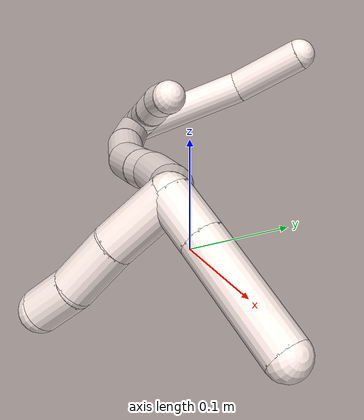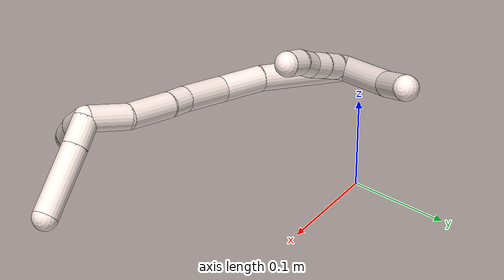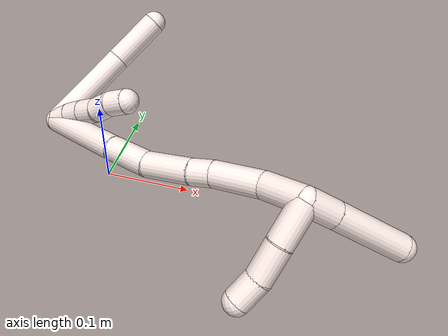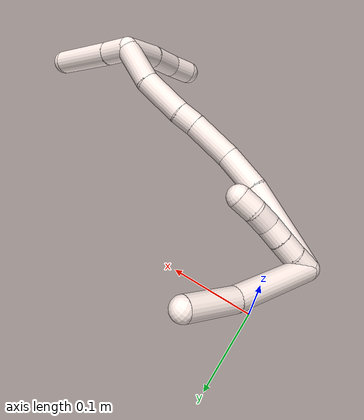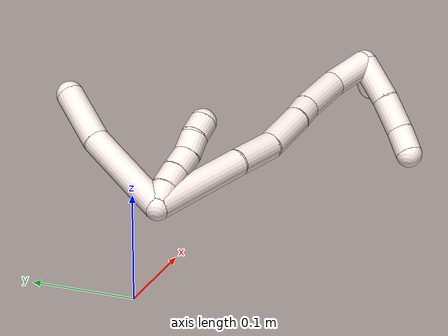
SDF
<sdf version="1.7">
 <world name="default">
  <model name="11">
   <static>0</static>
   <link name="11">
    <collision name="collision-cylinder-e_1_2_8">
     <pose>-0.011968 0.03309 0.030706 -0.82276 -0.25916 0.113579</pose>
     <geometry><cylinder><radius>0.0125</radius><length>0.093403</length></cylinder></geometry>
     <surface>
      <friction><ode><mu>1.16</mu><mu2>1.16</mu2><slip1>0</slip1><slip2>0</slip2></ode></friction>
      <contact><ode><kp>1e+06</kp><kd>1</kd><max_vel>0</max_vel><min_depth>0.001</min_depth></ode></contact>
     </surface>
    </collision>
    <visual name="visual-cylinder-e_1_2_8">
     <pose>-0.011968 0.03309 0.030706 -0.82276 -0.25916 0.113579</pose>
     <geometry><cylinder><radius>0.0125</radius><length>0.093403</length></cylinder></geometry>
     <material><ambient>1 0.933333 0.909804 1</ambient></material>
    </visual>
    <collision name="collision-cylinder-e_2_8_6">
     <pose>-0.03186 0.08196 0.083525 -0.619763 -0.283806 0.091425</pose>
     <geometry><cylinder><radius>0.0125</radius><length>0.056597</length></cylinder></geometry>
     <surface>
      <friction><ode><mu>1.16</mu><mu2>1.16</mu2><slip1>0</slip1><slip2>0</slip2></ode></friction>
      <contact><ode><kp>1e+06</kp><kd>1</kd><max_vel>0</max_vel><min_depth>0.001</min_depth></ode></contact>
     </surface>
    </collision>
    <visual name="visual-cylinder-e_2_8_6">
     <pose>-0.03186 0.08196 0.083525 -0.619763 -0.283806 0.091425</pose>
     <geometry><cylinder><radius>0.0125</radius><length>0.056597</length></cylinder></geometry>
     <material><ambient>1 0.933333 0.909804 1</ambient></material>
    </visual>
    <collision name="collision-cylinder-e_1_2_9">
     <pose>0.000116 -0.00106 0.009943 0.106222 0.011649 0.000619</pose>
     <geometry><cylinder><radius>0.0125</radius><length>0.02</length></cylinder></geometry>
     <surface>
      <friction><ode><mu>1.16</mu><mu2>1.16</mu2><slip1>0</slip1><slip2>0</slip2></ode></friction>
      <contact><ode><kp>1e+06</kp><kd>1</kd><max_vel>0</max_vel><min_depth>0.001</min_depth></ode></contact>
     </surface>
    </collision>
    <visual name="visual-cylinder-e_1_2_9">
     <pose>0.000116 -0.00106 0.009943 0.106222 0.011649 0.000619</pose>
     <geometry><cylinder><radius>0.0125</radius><length>0.02</length></cylinder></geometry>
     <material><ambient>1 0.933333 0.909804 1</ambient></material>
    </visual>
    <collision name="collision-cylinder-e_2_9_10">
     <pose>0.001498 -0.004343 0.029553 0.226027 0.126798 0.01441</pose>
     <geometry><cylinder><radius>0.0125</radius><length>0.02</length></cylinder></geometry>
     <surface>
      <friction><ode><mu>1.16</mu><mu2>1.16</mu2><slip1>0</slip1><slip2>0</slip2></ode></friction>
      <contact><ode><kp>1e+06</kp><kd>1</kd><max_vel>0</max_vel><min_depth>0.001</min_depth></ode></contact>
     </surface>
    </collision>
    <visual name="visual-cylinder-e_2_9_10">
     <pose>0.001498 -0.004343 0.029553 0.226027 0.126798 0.01441</pose>
     <geometry><cylinder><radius>0.0125</radius><length>0.02</length></cylinder></geometry>
     <material><ambient>1 0.933333 0.909804 1</ambient></material>
    </visual>
    <collision name="collision-cylinder-e_3_10_11">
     <pose>0.004444 -0.009052 0.04876 0.254922 0.168981 0.021707</pose>
     <geometry><cylinder><radius>0.0125</radius><length>0.02</length></cylinder></geometry>
     <surface>
      <friction><ode><mu>1.16</mu><mu2>1.16</mu2><slip1>0</slip1><slip2>0</slip2></ode></friction>
      <contact><ode><kp>1e+06</kp><kd>1</kd><max_vel>0</max_vel><min_depth>0.001</min_depth></ode></contact>
     </surface>
    </collision>
    <visual name="visual-cylinder-e_3_10_11">
     <pose>0.004444 -0.009052 0.04876 0.254922 0.168981 0.021707</pose>
     <geometry><cylinder><radius>0.0125</radius><length>0.02</length></cylinder></geometry>
     <material><ambient>1 0.933333 0.909804 1</ambient></material>
    </visual>
    <collision name="collision-cylinder-e_4_11_12">
     <pose>0.005914 -0.012829 0.068213 0.129535 -0.021185 -0.001374</pose>
     <geometry><cylinder><radius>0.0125</radius><length>0.02</length></cylinder></geometry>
     <surface>
      <friction><ode><mu>1.16</mu><mu2>1.16</mu2><slip1>0</slip1><slip2>0</slip2></ode></friction>
      <contact><ode><kp>1e+06</kp><kd>1</kd><max_vel>0</max_vel><min_depth>0.001</min_depth></ode></contact>
     </surface>
    </collision>
    <visual name="visual-cylinder-e_4_11_12">
     <pose>0.005914 -0.012829 0.068213 0.129535 -0.021185 -0.001374</pose>
     <geometry><cylinder><radius>0.0125</radius><length>0.02</length></cylinder></geometry>
     <material><ambient>1 0.933333 0.909804 1</ambient></material>
    </visual>
    <collision name="collision-cylinder-e_5_12_5">
     <pose>0.007843 -0.015217 0.087833 0.112437 0.215779 0.012191</pose>
     <geometry><cylinder><radius>0.0125</radius><length>0.02</length></cylinder></geometry>
     <surface>
      <friction><ode><mu>1.16</mu><mu2>1.16</mu2><slip1>0</slip1><slip2>0</slip2></ode></friction>
      <contact><ode><kp>1e+06</kp><kd>1</kd><max_vel>0</max_vel><min_depth>0.001</min_depth></ode></contact>
     </surface>
    </collision>
    <visual name="visual-cylinder-e_5_12_5">
     <pose>0.007843 -0.015217 0.087833 0.112437 0.215779 0.012191</pose>
     <geometry><cylinder><radius>0.0125</radius><length>0.02</length></cylinder></geometry>
     <material><ambient>1 0.933333 0.909804 1</ambient></material>
    </visual>
    <collision name="collision-cylinder-e_1_2_13">
     <pose>0.021223 -0.020729 0.037113 0.509376 0.463037 0.122595</pose>
     <geometry><cylinder><radius>0.0125</radius><length>0.095026</length></cylinder></geometry>
     <surface>
      <friction><ode><mu>1.16</mu><mu2>1.16</mu2><slip1>0</slip1><slip2>0</slip2></ode></friction>
      <contact><ode><kp>1e+06</kp><kd>1</kd><max_vel>0</max_vel><min_depth>0.001</min_depth></ode></contact>
     </surface>
    </collision>
    <visual name="visual-cylinder-e_1_2_13">
     <pose>0.021223 -0.020729 0.037113 0.509376 0.463037 0.122595</pose>
     <geometry><cylinder><radius>0.0125</radius><length>0.095026</length></cylinder></geometry>
     <material><ambient>1 0.933333 0.909804 1</ambient></material>
    </visual>
    <collision name="collision-cylinder-e_2_13_14">
     <pose>0.054063 -0.048578 0.091582 0.389269 0.554508 0.112083</pose>
     <geometry><cylinder><radius>0.0125</radius><length>0.044129</length></cylinder></geometry>
     <surface>
      <friction><ode><mu>1.16</mu><mu2>1.16</mu2><slip1>0</slip1><slip2>0</slip2></ode></friction>
      <contact><ode><kp>1e+06</kp><kd>1</kd><max_vel>0</max_vel><min_depth>0.001</min_depth></ode></contact>
     </surface>
    </collision>
    <visual name="visual-cylinder-e_2_13_14">
     <pose>0.054063 -0.048578 0.091582 0.389269 0.554508 0.112083</pose>
     <geometry><cylinder><radius>0.0125</radius><length>0.044129</length></cylinder></geometry>
     <material><ambient>1 0.933333 0.909804 1</ambient></material>
    </visual>
    <collision name="collision-cylinder-e_3_14_15">
     <pose>0.075079 -0.060211 0.13048 0.206568 0.403574 0.042402</pose>
     <geometry><cylinder><radius>0.0125</radius><length>0.047868</length></cylinder></geometry>
     <surface>
      <friction><ode><mu>1.16</mu><mu2>1.16</mu2><slip1>0</slip1><slip2>0</slip2></ode></friction>
      <contact><ode><kp>1e+06</kp><kd>1</kd><max_vel>0</max_vel><min_depth>0.001</min_depth></ode></contact>
     </surface>
    </collision>
    <visual name="visual-cylinder-e_3_14_15">
     <pose>0.075079 -0.060211 0.13048 0.206568 0.403574 0.042402</pose>
     <geometry><cylinder><radius>0.0125</radius><length>0.047868</length></cylinder></geometry>
     <material><ambient>1 0.933333 0.909804 1</ambient></material>
    </visual>
    <collision name="collision-cylinder-e_4_15_16">
     <pose>0.088568 -0.065681 0.161897 0.096496 0.39108 0.019127</pose>
     <geometry><cylinder><radius>0.0125</radius><length>0.02146</length></cylinder></geometry>
     <surface>
      <friction><ode><mu>1.16</mu><mu2>1.16</mu2><slip1>0</slip1><slip2>0</slip2></ode></friction>
      <contact><ode><kp>1e+06</kp><kd>1</kd><max_vel>0</max_vel><min_depth>0.001</min_depth></ode></contact>
     </surface>
    </collision>
    <visual name="visual-cylinder-e_4_15_16">
     <pose>0.088568 -0.065681 0.161897 0.096496 0.39108 0.019127</pose>
     <geometry><cylinder><radius>0.0125</radius><length>0.02146</length></cylinder></geometry>
     <material><ambient>1 0.933333 0.909804 1</ambient></material>
    </visual>
    <collision name="collision-cylinder-e_5_16_17">
     <pose>0.103075 -0.071655 0.19323 0.22971 0.441545 0.05177</pose>
     <geometry><cylinder><radius>0.0125</radius><length>0.048752</length></cylinder></geometry>
     <surface>
      <friction><ode><mu>1.16</mu><mu2>1.16</mu2><slip1>0</slip1><slip2>0</slip2></ode></friction>
      <contact><ode><kp>1e+06</kp><kd>1</kd><max_vel>0</max_vel><min_depth>0.001</min_depth></ode></contact>
     </surface>
    </collision>
    <visual name="visual-cylinder-e_5_16_17">
     <pose>0.103075 -0.071655 0.19323 0.22971 0.441545 0.05177</pose>
     <geometry><cylinder><radius>0.0125</radius><length>0.048752</length></cylinder></geometry>
     <material><ambient>1 0.933333 0.909804 1</ambient></material>
    </visual>
    <collision name="collision-cylinder-e_6_17_1">
     <pose>0.121428 -0.08618 0.23212 0.499286 0.380267 0.09806</pose>
     <geometry><cylinder><radius>0.0125</radius><length>0.042765</length></cylinder></geometry>
     <surface>
      <friction><ode><mu>1.16</mu><mu2>1.16</mu2><slip1>0</slip1><slip2>0</slip2></ode></friction>
      <contact><ode><kp>1e+06</kp><kd>1</kd><max_vel>0</max_vel><min_depth>0.001</min_depth></ode></contact>
     </surface>
    </collision>
    <visual name="visual-cylinder-e_6_17_1">
     <pose>0.121428 -0.08618 0.23212 0.499286 0.380267 0.09806</pose>
     <geometry><cylinder><radius>0.0125</radius><length>0.042765</length></cylinder></geometry>
     <material><ambient>1 0.933333 0.909804 1</ambient></material>
    </visual>
    <collision name="collision-cylinder-e_1_1_18">
     <pose>0.139724 -0.10501 0.234776 2.57866 0.535202 1.51768</pose>
     <geometry><cylinder><radius>0.0125</radius><length>0.040622</length></cylinder></geometry>
     <surface>
      <friction><ode><mu>1.16</mu><mu2>1.16</mu2><slip1>0</slip1><slip2>0</slip2></ode></friction>
      <contact><ode><kp>1e+06</kp><kd>1</kd><max_vel>0</max_vel><min_depth>0.001</min_depth></ode></contact>
     </surface>
    </collision>
    <visual name="visual-cylinder-e_1_1_18">
     <pose>0.139724 -0.10501 0.234776 2.57866 0.535202 1.51768</pose>
     <geometry><cylinder><radius>0.0125</radius><length>0.040622</length></cylinder></geometry>
     <material><ambient>1 0.933333 0.909804 1</ambient></material>
    </visual>
    <collision name="collision-cylinder-e_2_18_19">
     <pose>0.159223 -0.12051 0.207348 2.68745 0.575778 1.81638</pose>
     <geometry><cylinder><radius>0.0125</radius><length>0.033573</length></cylinder></geometry>
     <surface>
      <friction><ode><mu>1.16</mu><mu2>1.16</mu2><slip1>0</slip1><slip2>0</slip2></ode></friction>
      <contact><ode><kp>1e+06</kp><kd>1</kd><max_vel>0</max_vel><min_depth>0.001</min_depth></ode></contact>
     </surface>
    </collision>
    <visual name="visual-cylinder-e_2_18_19">
     <pose>0.159223 -0.12051 0.207348 2.68745 0.575778 1.81638</pose>
     <geometry><cylinder><radius>0.0125</radius><length>0.033573</length></cylinder></geometry>
     <material><ambient>1 0.933333 0.909804 1</ambient></material>
    </visual>
    <collision name="collision-cylinder-e_3_19_4">
     <pose>0.172801 -0.131634 0.183636 2.72099 0.35114 1.38679</pose>
     <geometry><cylinder><radius>0.0125</radius><length>0.025804</length></cylinder></geometry>
     <surface>
      <friction><ode><mu>1.16</mu><mu2>1.16</mu2><slip1>0</slip1><slip2>0</slip2></ode></friction>
      <contact><ode><kp>1e+06</kp><kd>1</kd><max_vel>0</max_vel><min_depth>0.001</min_depth></ode></contact>
     </surface>
    </collision>
    <visual name="visual-cylinder-e_3_19_4">
     <pose>0.172801 -0.131634 0.183636 2.72099 0.35114 1.38679</pose>
     <geometry><cylinder><radius>0.0125</radius><length>0.025804</length></cylinder></geometry>
     <material><ambient>1 0.933333 0.909804 1</ambient></material>
    </visual>
    <collision name="collision-cylinder-e_1_1_20">
     <pose>0.141453 -0.090274 0.255612 -0.72893 0.978988 -0.401027</pose>
     <geometry><cylinder><radius>0.0125</radius><length>0.029129</length></cylinder></geometry>
     <surface>
      <friction><ode><mu>1.16</mu><mu2>1.16</mu2><slip1>0</slip1><slip2>0</slip2></ode></friction>
      <contact><ode><kp>1e+06</kp><kd>1</kd><max_vel>0</max_vel><min_depth>0.001</min_depth></ode></contact>
     </surface>
    </collision>
    <visual name="visual-cylinder-e_1_1_20">
     <pose>0.141453 -0.090274 0.255612 -0.72893 0.978988 -0.401027</pose>
     <geometry><cylinder><radius>0.0125</radius><length>0.029129</length></cylinder></geometry>
     <material><ambient>1 0.933333 0.909804 1</ambient></material>
    </visual>
    <collision name="collision-cylinder-e_2_20_3">
     <pose>0.183135 -0.072559 0.276786 -0.68322 0.988459 -0.378577</pose>
     <geometry><cylinder><radius>0.0125</radius><length>0.070871</length></cylinder></geometry>
     <surface>
      <friction><ode><mu>1.16</mu><mu2>1.16</mu2><slip1>0</slip1><slip2>0</slip2></ode></friction>
      <contact><ode><kp>1e+06</kp><kd>1</kd><max_vel>0</max_vel><min_depth>0.001</min_depth></ode></contact>
     </surface>
    </collision>
    <visual name="visual-cylinder-e_2_20_3">
     <pose>0.183135 -0.072559 0.276786 -0.68322 0.988459 -0.378577</pose>
     <geometry><cylinder><radius>0.0125</radius><length>0.070871</length></cylinder></geometry>
     <material><ambient>1 0.933333 0.909804 1</ambient></material>
    </visual>
    <collision name="collision-sphere-3">
     <pose>0.21273 -0.060256 0.291901 0 -0 0</pose>
     <geometry><sphere><radius>0.0125</radius></sphere></geometry>
     <surface>
      <friction><ode><mu>1.16</mu><mu2>1.16</mu2><slip1>0</slip1><slip2>0</slip2></ode></friction>
      <contact><ode><kp>1e+06</kp><kd>1</kd><max_vel>0</max_vel><min_depth>0.001</min_depth></ode></contact>
     </surface>
    </collision>
    <visual name="visual-sphere-3">
     <pose>0.21273 -0.060256 0.291901 0 -0 0</pose>
     <geometry><sphere><radius>0.0125</radius></sphere></geometry>
     <material><ambient>1 0.933333 0.909804 1</ambient></material>
    </visual>
    <collision name="collision-sphere-20">
     <pose>0.15354 -0.084863 0.261672 0 -0 0</pose>
     <geometry><sphere><radius>0.0125</radius></sphere></geometry>
     <surface>
      <friction><ode><mu>1.16</mu><mu2>1.16</mu2><slip1>0</slip1><slip2>0</slip2></ode></friction>
      <contact><ode><kp>1e+06</kp><kd>1</kd><max_vel>0</max_vel><min_depth>0.001</min_depth></ode></contact>
     </surface>
    </collision>
    <visual name="visual-sphere-20">
     <pose>0.15354 -0.084863 0.261672 0 -0 0</pose>
     <geometry><sphere><radius>0.0125</radius></sphere></geometry>
     <material><ambient>1 0.933333 0.909804 1</ambient></material>
    </visual>
    <collision name="collision-sphere-4">
     <pose>0.177239 -0.136581 0.172577 0 -0 0</pose>
     <geometry><sphere><radius>0.0125</radius></sphere></geometry>
     <surface>
      <friction><ode><mu>1.16</mu><mu2>1.16</mu2><slip1>0</slip1><slip2>0</slip2></ode></friction>
      <contact><ode><kp>1e+06</kp><kd>1</kd><max_vel>0</max_vel><min_depth>0.001</min_depth></ode></contact>
     </surface>
    </collision>
    <visual name="visual-sphere-4">
     <pose>0.177239 -0.136581 0.172577 0 -0 0</pose>
     <geometry><sphere><radius>0.0125</radius></sphere></geometry>
     <material><ambient>1 0.933333 0.909804 1</ambient></material>
    </visual>
    <collision name="collision-sphere-11">
     <pose>0.006126 -0.011538 0.058299 0 -0 0</pose>
     <geometry><sphere><radius>0.0125</radius></sphere></geometry>
     <surface>
      <friction><ode><mu>1.16</mu><mu2>1.16</mu2><slip1>0</slip1><slip2>0</slip2></ode></friction>
      <contact><ode><kp>1e+06</kp><kd>1</kd><max_vel>0</max_vel><min_depth>0.001</min_depth></ode></contact>
     </surface>
    </collision>
    <visual name="visual-sphere-11">
     <pose>0.006126 -0.011538 0.058299 0 -0 0</pose>
     <geometry><sphere><radius>0.0125</radius></sphere></geometry>
     <material><ambient>1 0.933333 0.909804 1</ambient></material>
    </visual>
    <collision name="collision-sphere-10">
     <pose>0.002762 -0.006566 0.039221 0 -0 0</pose>
     <geometry><sphere><radius>0.0125</radius></sphere></geometry>
     <surface>
      <friction><ode><mu>1.16</mu><mu2>1.16</mu2><slip1>0</slip1><slip2>0</slip2></ode></friction>
      <contact><ode><kp>1e+06</kp><kd>1</kd><max_vel>0</max_vel><min_depth>0.001</min_depth></ode></contact>
     </surface>
    </collision>
    <visual name="visual-sphere-10">
     <pose>0.002762 -0.006566 0.039221 0 -0 0</pose>
     <geometry><sphere><radius>0.0125</radius></sphere></geometry>
     <material><ambient>1 0.933333 0.909804 1</ambient></material>
    </visual>
    <collision name="collision-sphere-6">
     <pose>-0.039784 0.097739 0.105639 0 -0 0</pose>
     <geometry><sphere><radius>0.0125</radius></sphere></geometry>
     <surface>
      <friction><ode><mu>1.16</mu><mu2>1.16</mu2><slip1>0</slip1><slip2>0</slip2></ode></friction>
      <contact><ode><kp>1e+06</kp><kd>1</kd><max_vel>0</max_vel><min_depth>0.001</min_depth></ode></contact>
     </surface>
    </collision>
    <visual name="visual-sphere-6">
     <pose>-0.039784 0.097739 0.105639 0 -0 0</pose>
     <geometry><sphere><radius>0.0125</radius></sphere></geometry>
     <material><ambient>1 0.933333 0.909804 1</ambient></material>
    </visual>
    <collision name="collision-sphere-9">
     <pose>0.000233 -0.00212 0.019886 0 -0 0</pose>
     <geometry><sphere><radius>0.0125</radius></sphere></geometry>
     <surface>
      <friction><ode><mu>1.16</mu><mu2>1.16</mu2><slip1>0</slip1><slip2>0</slip2></ode></friction>
      <contact><ode><kp>1e+06</kp><kd>1</kd><max_vel>0</max_vel><min_depth>0.001</min_depth></ode></contact>
     </surface>
    </collision>
    <visual name="visual-sphere-9">
     <pose>0.000233 -0.00212 0.019886 0 -0 0</pose>
     <geometry><sphere><radius>0.0125</radius></sphere></geometry>
     <material><ambient>1 0.933333 0.909804 1</ambient></material>
    </visual>
    <collision name="collision-sphere-2">
     <geometry><sphere><radius>0.0125</radius></sphere></geometry>
     <surface>
      <friction><ode><mu>1.16</mu><mu2>1.16</mu2><slip1>0</slip1><slip2>0</slip2></ode></friction>
      <contact><ode><kp>1e+06</kp><kd>1</kd><max_vel>0</max_vel><min_depth>0.001</min_depth></ode></contact>
     </surface>
    </collision>
    <visual name="visual-sphere-2">
     <geometry><sphere><radius>0.0125</radius></sphere></geometry>
     <material><ambient>1 0.933333 0.909804 1</ambient></material>
    </visual>
    <collision name="collision-sphere-19">
     <pose>0.168363 -0.126687 0.194695 0 -0 0</pose>
     <geometry><sphere><radius>0.0125</radius></sphere></geometry>
     <surface>
      <friction><ode><mu>1.16</mu><mu2>1.16</mu2><slip1>0</slip1><slip2>0</slip2></ode></friction>
      <contact><ode><kp>1e+06</kp><kd>1</kd><max_vel>0</max_vel><min_depth>0.001</min_depth></ode></contact>
     </surface>
    </collision>
    <visual name="visual-sphere-19">
     <pose>0.168363 -0.126687 0.194695 0 -0 0</pose>
     <geometry><sphere><radius>0.0125</radius></sphere></geometry>
     <material><ambient>1 0.933333 0.909804 1</ambient></material>
    </visual>
    <collision name="collision-sphere-8">
     <pose>-0.023936 0.06618 0.061411 0 -0 0</pose>
     <geometry><sphere><radius>0.0125</radius></sphere></geometry>
     <surface>
      <friction><ode><mu>1.16</mu><mu2>1.16</mu2><slip1>0</slip1><slip2>0</slip2></ode></friction>
      <contact><ode><kp>1e+06</kp><kd>1</kd><max_vel>0</max_vel><min_depth>0.001</min_depth></ode></contact>
     </surface>
    </collision>
    <visual name="visual-sphere-8">
     <pose>-0.023936 0.06618 0.061411 0 -0 0</pose>
     <geometry><sphere><radius>0.0125</radius></sphere></geometry>
     <material><ambient>1 0.933333 0.909804 1</ambient></material>
    </visual>
    <collision name="collision-sphere-12">
     <pose>0.005702 -0.014121 0.078127 0 -0 0</pose>
     <geometry><sphere><radius>0.0125</radius></sphere></geometry>
     <surface>
      <friction><ode><mu>1.16</mu><mu2>1.16</mu2><slip1>0</slip1><slip2>0</slip2></ode></friction>
      <contact><ode><kp>1e+06</kp><kd>1</kd><max_vel>0</max_vel><min_depth>0.001</min_depth></ode></contact>
     </surface>
    </collision>
    <visual name="visual-sphere-12">
     <pose>0.005702 -0.014121 0.078127 0 -0 0</pose>
     <geometry><sphere><radius>0.0125</radius></sphere></geometry>
     <material><ambient>1 0.933333 0.909804 1</ambient></material>
    </visual>
    <collision name="collision-sphere-5">
     <pose>0.009984 -0.016313 0.09754 0 -0 0</pose>
     <geometry><sphere><radius>0.0125</radius></sphere></geometry>
     <surface>
      <friction><ode><mu>1.16</mu><mu2>1.16</mu2><slip1>0</slip1><slip2>0</slip2></ode></friction>
      <contact><ode><kp>1e+06</kp><kd>1</kd><max_vel>0</max_vel><min_depth>0.001</min_depth></ode></contact>
     </surface>
    </collision>
    <visual name="visual-sphere-5">
     <pose>0.009984 -0.016313 0.09754 0 -0 0</pose>
     <geometry><sphere><radius>0.0125</radius></sphere></geometry>
     <material><ambient>1 0.933333 0.909804 1</ambient></material>
    </visual>
    <collision name="collision-sphere-13">
     <pose>0.042445 -0.041459 0.074227 0 -0 0</pose>
     <geometry><sphere><radius>0.0125</radius></sphere></geometry>
     <surface>
      <friction><ode><mu>1.16</mu><mu2>1.16</mu2><slip1>0</slip1><slip2>0</slip2></ode></friction>
      <contact><ode><kp>1e+06</kp><kd>1</kd><max_vel>0</max_vel><min_depth>0.001</min_depth></ode></contact>
     </surface>
    </collision>
    <visual name="visual-sphere-13">
     <pose>0.042445 -0.041459 0.074227 0 -0 0</pose>
     <geometry><sphere><radius>0.0125</radius></sphere></geometry>
     <material><ambient>1 0.933333 0.909804 1</ambient></material>
    </visual>
    <collision name="collision-sphere-14">
     <pose>0.06568 -0.055697 0.108936 0 -0 0</pose>
     <geometry><sphere><radius>0.0125</radius></sphere></geometry>
     <surface>
      <friction><ode><mu>1.16</mu><mu2>1.16</mu2><slip1>0</slip1><slip2>0</slip2></ode></friction>
      <contact><ode><kp>1e+06</kp><kd>1</kd><max_vel>0</max_vel><min_depth>0.001</min_depth></ode></contact>
     </surface>
    </collision>
    <visual name="visual-sphere-14">
     <pose>0.06568 -0.055697 0.108936 0 -0 0</pose>
     <geometry><sphere><radius>0.0125</radius></sphere></geometry>
     <material><ambient>1 0.933333 0.909804 1</ambient></material>
    </visual>
    <collision name="collision-sphere-15">
     <pose>0.084478 -0.064726 0.152023 0 -0 0</pose>
     <geometry><sphere><radius>0.0125</radius></sphere></geometry>
     <surface>
      <friction><ode><mu>1.16</mu><mu2>1.16</mu2><slip1>0</slip1><slip2>0</slip2></ode></friction>
      <contact><ode><kp>1e+06</kp><kd>1</kd><max_vel>0</max_vel><min_depth>0.001</min_depth></ode></contact>
     </surface>
    </collision>
    <visual name="visual-sphere-15">
     <pose>0.084478 -0.064726 0.152023 0 -0 0</pose>
     <geometry><sphere><radius>0.0125</radius></sphere></geometry>
     <material><ambient>1 0.933333 0.909804 1</ambient></material>
    </visual>
    <collision name="collision-sphere-16">
     <pose>0.092658 -0.066637 0.17177 0 -0 0</pose>
     <geometry><sphere><radius>0.0125</radius></sphere></geometry>
     <surface>
      <friction><ode><mu>1.16</mu><mu2>1.16</mu2><slip1>0</slip1><slip2>0</slip2></ode></friction>
      <contact><ode><kp>1e+06</kp><kd>1</kd><max_vel>0</max_vel><min_depth>0.001</min_depth></ode></contact>
     </surface>
    </collision>
    <visual name="visual-sphere-16">
     <pose>0.092658 -0.066637 0.17177 0 -0 0</pose>
     <geometry><sphere><radius>0.0125</radius></sphere></geometry>
     <material><ambient>1 0.933333 0.909804 1</ambient></material>
    </visual>
    <collision name="collision-sphere-17">
     <pose>0.113492 -0.076673 0.214689 0 -0 0</pose>
     <geometry><sphere><radius>0.0125</radius></sphere></geometry>
     <surface>
      <friction><ode><mu>1.16</mu><mu2>1.16</mu2><slip1>0</slip1><slip2>0</slip2></ode></friction>
      <contact><ode><kp>1e+06</kp><kd>1</kd><max_vel>0</max_vel><min_depth>0.001</min_depth></ode></contact>
     </surface>
    </collision>
    <visual name="visual-sphere-17">
     <pose>0.113492 -0.076673 0.214689 0 -0 0</pose>
     <geometry><sphere><radius>0.0125</radius></sphere></geometry>
     <material><ambient>1 0.933333 0.909804 1</ambient></material>
    </visual>
    <collision name="collision-sphere-1">
     <pose>0.129365 -0.095686 0.249551 0 -0 0</pose>
     <geometry><sphere><radius>0.0125</radius></sphere></geometry>
     <surface>
      <friction><ode><mu>1.16</mu><mu2>1.16</mu2><slip1>0</slip1><slip2>0</slip2></ode></friction>
      <contact><ode><kp>1e+06</kp><kd>1</kd><max_vel>0</max_vel><min_depth>0.001</min_depth></ode></contact>
     </surface>
    </collision>
    <visual name="visual-sphere-1">
     <pose>0.129365 -0.095686 0.249551 0 -0 0</pose>
     <geometry><sphere><radius>0.0125</radius></sphere></geometry>
     <material><ambient>1 0.933333 0.909804 1</ambient></material>
    </visual>
    <collision name="collision-sphere-18">
     <pose>0.150083 -0.114334 0.220001 0 -0 0</pose>
     <geometry><sphere><radius>0.0125</radius></sphere></geometry>
     <surface>
      <friction><ode><mu>1.16</mu><mu2>1.16</mu2><slip1>0</slip1><slip2>0</slip2></ode></friction>
      <contact><ode><kp>1e+06</kp><kd>1</kd><max_vel>0</max_vel><min_depth>0.001</min_depth></ode></contact>
     </surface>
    </collision>
    <visual name="visual-sphere-18">
     <pose>0.150083 -0.114334 0.220001 0 -0 0</pose>
     <geometry><sphere><radius>0.0125</radius></sphere></geometry>
     <material><ambient>1 0.933333 0.909804 1</ambient></material>
    </visual>
    <inertial>
     <pose>0.066894 -0.03758 0.129887 0 -0 0</pose>
     <mass>0.75</mass>
     <inertia>
      <ixx>0.000257</ixx>
      <ixy>0</ixy>
      <ixz>0</ixz>
      <iyy>0.000238</iyy>
      <iyz>0</iyz>
      <izz>-5.5e-05</izz>
     </inertia>
    </inertial>
   </link>
   <pose>-0.030015 -0.037024 0.107001 -0.430535 0.925293 -0.403158</pose>
  </model>
 </world>
</sdf>
